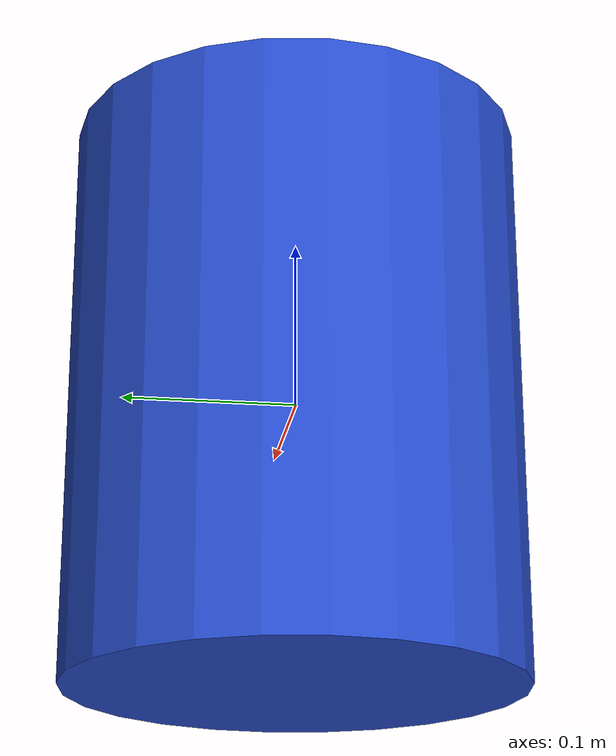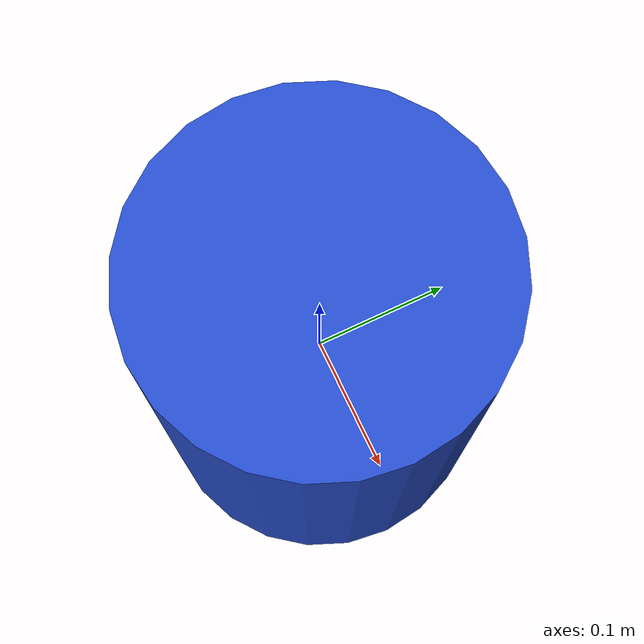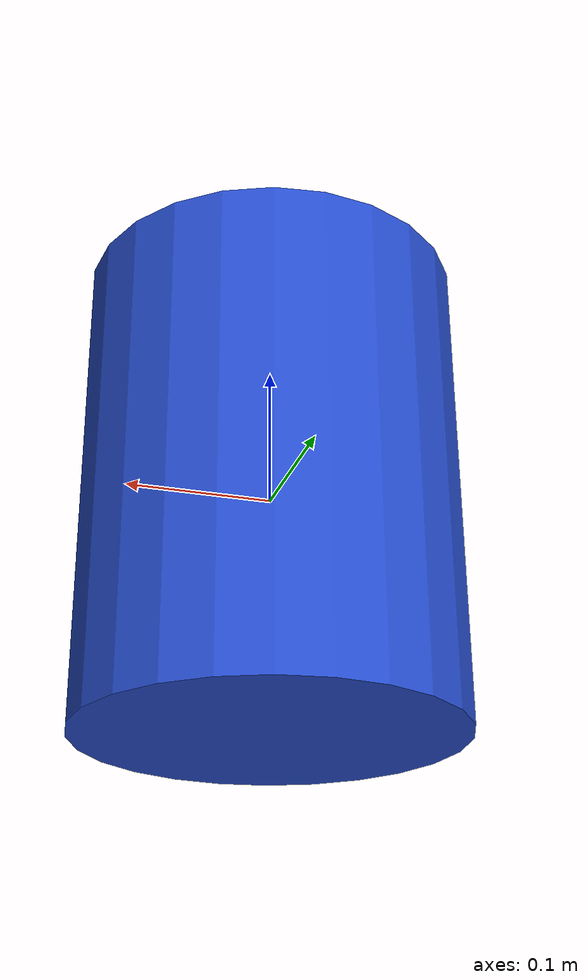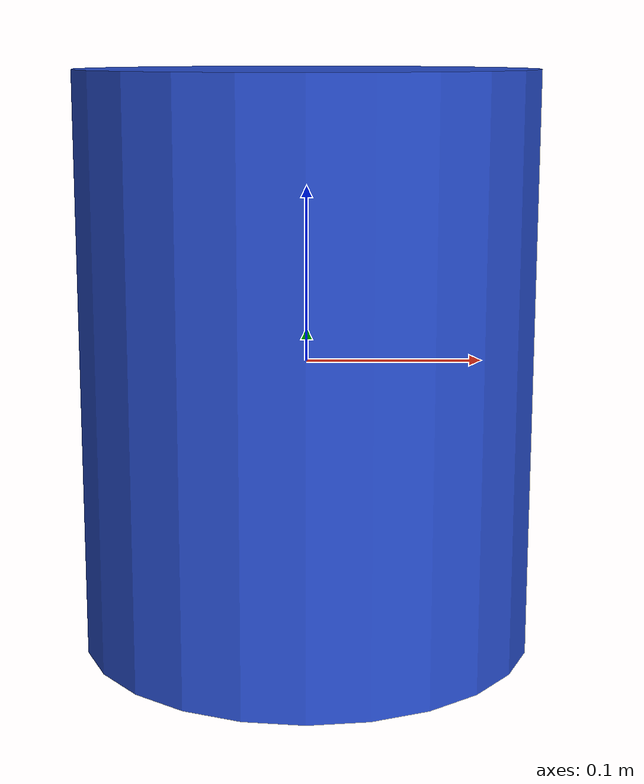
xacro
<?xml version="1.0"?>
<robot name="latita" xmlns:xacro="http://ros.org/wiki/xacro">
  <xacro:property name="pi" value="3.1415" />

<!-- DEFINICIONES INICIALES -->
  <xacro:macro name="default_inertial" params="mass">
    <inertial>
      <mass value="${mass}" />
      <inertia ixx="1.0" ixy="0.0" ixz="0.0" iyy="1.0" iyz="0.0" izz="1.0" />
    </inertial>
  </xacro:macro>

<!-- CONSTRUCCION DE latitaS PARA CONTROLAR LA TERCERA EN TODAS LAS POSICIONES -->

  <link name="world">
  </link>

  <joint name="latitaX_extension" type="prismatic">
    <parent link="world"/>
    <child link="latitaX_link"/>
    <axis xyz="1 0 0" />
    <limit effort="1000.0" lower="-100" upper="100" velocity="0.5"/>
    <origin rpy="0 0 0" xyz="0 0 0"/>
    <dynamics damping="1.0" friction="0.0"/>
  </joint>

  <joint name="latitaY_extension" type="prismatic">
    <parent link="latitaX_link"/>
    <child link="latitaY_link"/>
    <axis xyz="0 1 0" />
    <limit effort="1000.0" lower="-100" upper="100" velocity="0.5"/>
    <origin rpy="0 0 0" xyz="0 0 0"/>
    <dynamics damping="1.0" friction="0.0"/>
  </joint>

  <joint name="latitaZ_extension" type="prismatic">
    <parent link="latitaY_link"/>
    <child link="latitaZ_link"/>
    <axis xyz="0 0 1" />
    <limit effort="1000.0" lower="-100" upper="100" velocity="0.5"/>
    <origin rpy="0 0 0" xyz="0 0 0"/>
    <dynamics damping="1.0" friction="0.0"/>
  </joint>

<!-- AQUI SE DEFINE LAS CARACTERISTICAS FISICAS DE LA ESFERITA-->
  <link name="latitaX_link">
    <gravity>0</gravity>
    <visual>
      <geometry>
        <cylinder radius="0.0005" length="0.001"/>
      </geometry>
      <origin xyz="0 0 0" rpy="0 0 0 "/>
    </visual>
    <xacro:default_inertial mass="0.01"/>
  </link>

  <link name="latitaY_link">
    <gravity>0</gravity>
    <visual>
      <geometry>
        <cylinder radius="0.0005" length="0.001"/>
      </geometry>
      <origin xyz="0 0 0" rpy="0 0 0 "/>
    </visual>
    <xacro:default_inertial mass="0.01"/>
  </link>

  <link name="latitaZ_link">
    <gravity>0</gravity>
    <visual>
      <geometry>
        <cylinder radius="0.13" length="0.33"/>
      </geometry>
      <origin xyz="0 0 0" rpy="0 0 0 "/>
    </visual>
    <xacro:default_inertial mass="0.01"/>
  </link>

  <transmission name="gripper_extension_transX" type="SimpleTransmission">
    <type>transmission_interface/SimpleTransmission</type>
    <actuator name="gripper_extension_motorX">
      <mechanicalReduction>1</mechanicalReduction>
    </actuator>
    <joint name="latitaX_extension">
      <hardwareInterface>EffortJointInterface</hardwareInterface>
    </joint>
  </transmission>

  <transmission name="gripper_extension_transY" type="SimpleTransmission">
    <type>transmission_interface/SimpleTransmission</type>
    <actuator name="gripper_extension_motorY">
      <mechanicalReduction>1</mechanicalReduction>
    </actuator>
    <joint name="latitaY_extension">
      <hardwareInterface>EffortJointInterface</hardwareInterface>
    </joint>
  </transmission>

  <transmission name="gripper_extension_transZ" type="SimpleTransmission">
    <type>transmission_interface/SimpleTransmission</type>
    <actuator name="gripper_extension_motorZ">
      <mechanicalReduction>1</mechanicalReduction>
    </actuator>
    <joint name="latitaZ_extension">
      <hardwareInterface>EffortJointInterface</hardwareInterface>
    </joint>
  </transmission>

  <!-- Gazebo plugin for ROS Control -->
  <gazebo>
    <plugin name="gazebo_ros_control" filename="libgazebo_ros_control.so">
    </plugin>
  </gazebo>
<!-- solo para test -->
  <gazebo reference="latitaZ_link">
    <mu1>0.2</mu1>
    <mu2>0.2</mu2>
    <material>Gazebo/Blue</material>
  </gazebo>

</robot>
